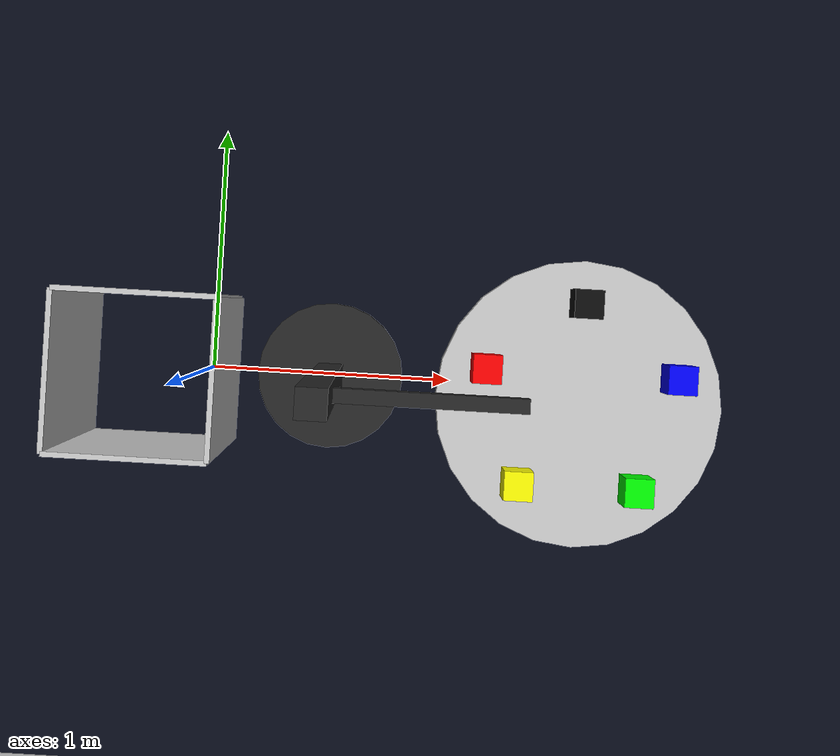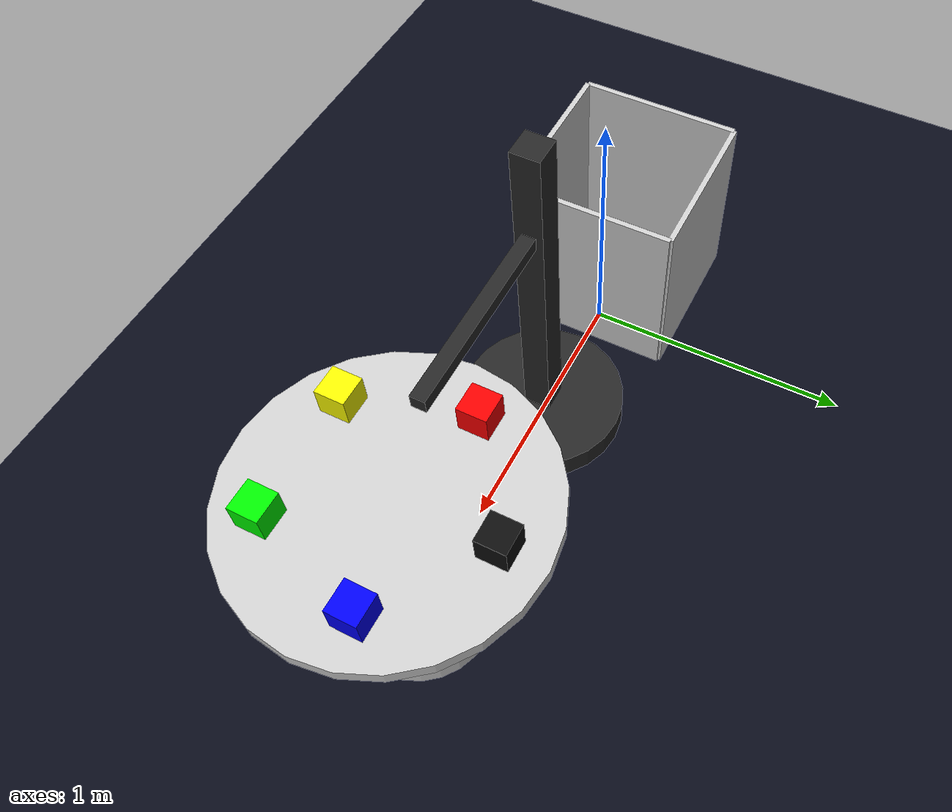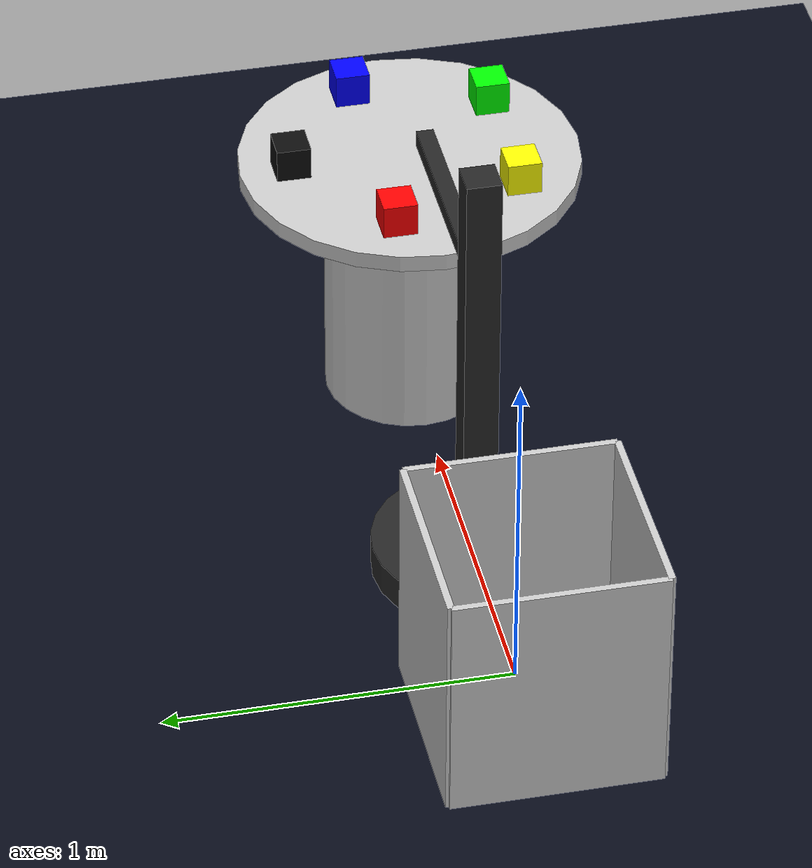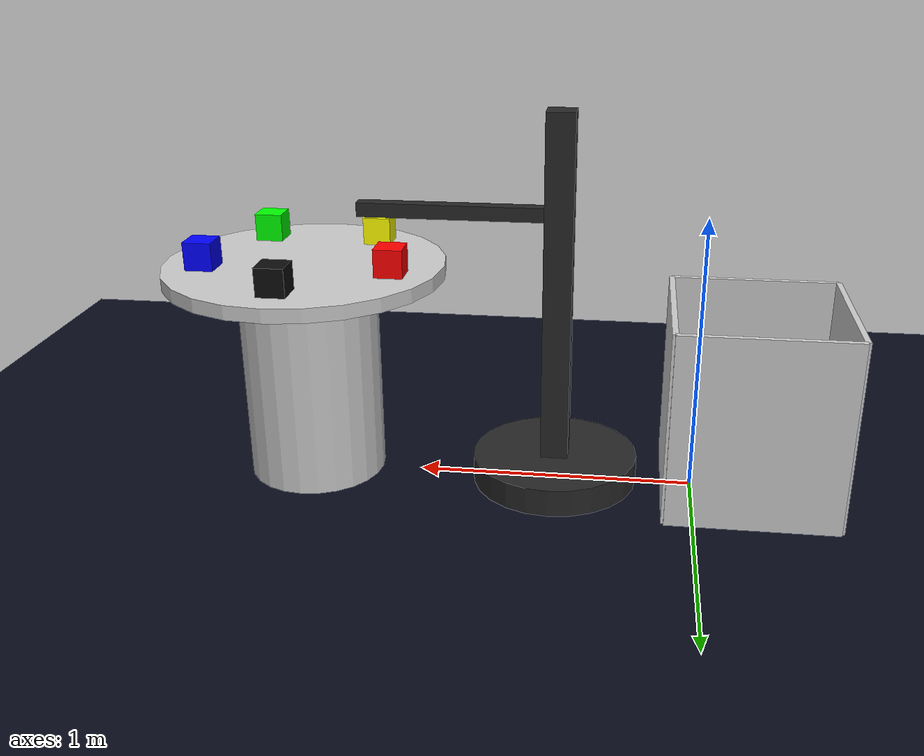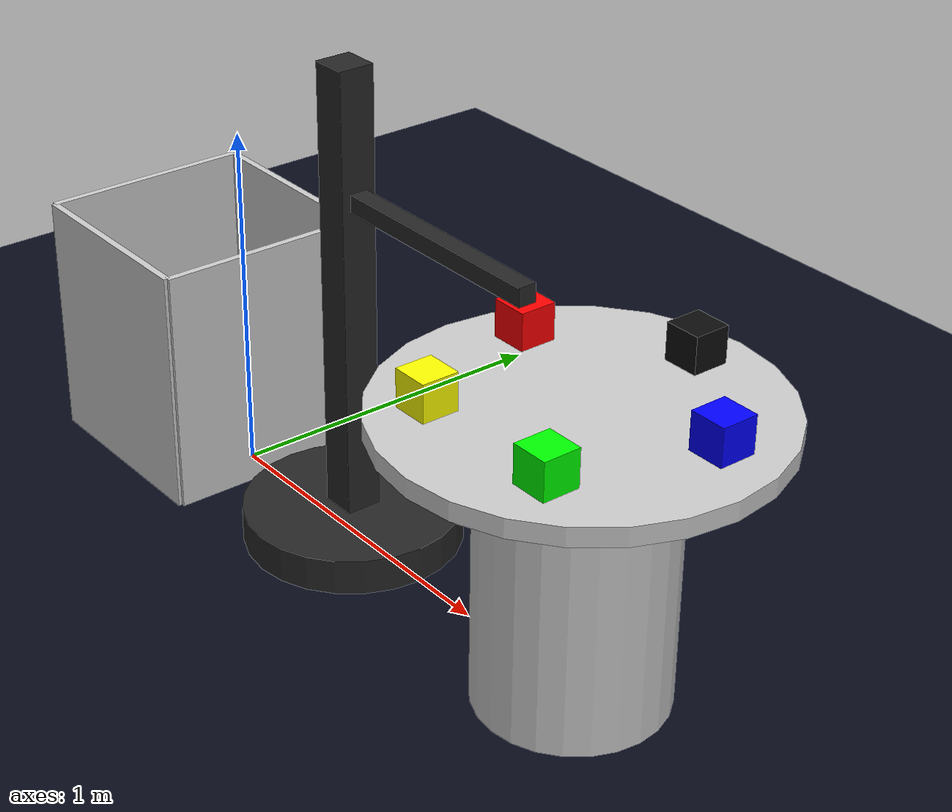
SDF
<?xml version="1.0" ?>
<sdf version="1.11">

<!-- Commands to "attach" red cube and rotate robot to face the bin
  (run these two in sequence to avoid bumping other cubes)-->
<![CDATA[

gz service -s /payload/attach_detach \
  --reqtype gz.msgs.AttachDetachRequest \
  --reptype gz.msgs.Result \
  --timeout 3000 \
  --req 'child_model_name:"red_cube" child_link_name:"link" command:ATTACH'

gz service -s /world/dynamic_detach_demo/set_pose \
  --reqtype gz.msgs.Pose \
  --reptype gz.msgs.Boolean \
  --timeout 3000 \
  --req 'name:"single_arm_robot" position { x: 0.5 y: 0.0 z: 0.75 } orientation { x: 0 y: 0 z: 1 w: 0 }'

]]>

<!-- Commands to "detach" and turn back to original orientation -->
<![CDATA[

gz service -s /payload/attach_detach \
  --reqtype gz.msgs.AttachDetachRequest \
  --reptype gz.msgs.Result \
  --timeout 3000 \
  --req 'child_model_name:"red_cube" child_link_name:"link" command:DETACH'

# Rotate the robot back to original orientation.
gz service -s /world/dynamic_detach_demo/set_pose \
  --reqtype gz.msgs.Pose \
  --reptype gz.msgs.Boolean \
  --timeout 3000 \
  --req 'name:"single_arm_robot" position { x: 0.5 y: 0.0 z: 0.75 } orientation { x: 0 y: 0 z: 0 w: 1 }'

]]>

<!-- Monitor attach/detach state messages -->
  <!--gz topic -e -t /payload/child_state-->

  <world name="dynamic_detach_demo">

    <physics name="1ms" type="ignored">
      <max_step_size>0.001</max_step_size>
      <real_time_factor>1.0</real_time_factor>
    </physics>
    <plugin
      filename="gz-sim-physics-system"
      name="gz::sim::systems::Physics">
    </plugin>
    <plugin
      filename="gz-sim-user-commands-system"
      name="gz::sim::systems::UserCommands">
    </plugin>
    <plugin
      filename="gz-sim-scene-broadcaster-system"
      name="gz::sim::systems::SceneBroadcaster">
    </plugin>

    <light type="directional" name="sun">
      <cast_shadows>true</cast_shadows>
      <pose>0 0 10 0 0 0</pose>
      <diffuse>1 1 1 1</diffuse>
      <specular>0.5 0.5 0.5 1</specular>
      <attenuation>
        <range>1000</range>
        <constant>0.9</constant>
        <linear>0.01</linear>
        <quadratic>0.001</quadratic>
      </attenuation>
      <direction>-0.5 0.1 -0.9</direction>
    </light>

    <model name="ground_plane">
      <static>true</static>
      <link name="link">
        <collision name="collision">
          <geometry>
            <plane>
              <normal>0 0 1</normal>
              <size>100 100</size>
            </plane>
          </geometry>
        </collision>
        <visual name="visual">
          <geometry>
            <plane>
              <normal>0 0 1</normal>
              <size>100 100</size>
            </plane>
          </geometry>
          <material>
            <ambient>0.031 0.043 0.1 1</ambient>
            <diffuse>0.031 0.043 0.1 1</diffuse>
            <specular>0.031 0.043 0.1 1</specular>
          </material>
        </visual>
      </link>
    </model>

    <!-- Simple single arm robot -->
    <model name="single_arm_robot">
      <pose>0.5 0 0.75 0 0 0</pose>
      <self_collide>false</self_collide>
      <link name="base_link">
        <inertial>
          <mass>40</mass>
        </inertial>
        <collision name="base_collision">
          <pose>0 0 -0.70 0 0 0</pose>
          <geometry>
            <cylinder>
              <radius>0.3</radius>
              <length>0.10</length>
            </cylinder>
          </geometry>
        </collision>
        <visual name="base_visual">
          <pose>0 0 -0.70 0 0 0</pose>
          <geometry>
            <cylinder>
              <radius>0.3</radius>
              <length>0.10</length>
            </cylinder>
          </geometry>
          <material>
            <ambient>0.15 0.15 0.15 1</ambient>
            <diffuse>0.15 0.15 0.15 1</diffuse>
          </material>
        </visual>
        <collision name="body_collision">
          <pose>0 0 -0.075 0 0 0</pose>
          <geometry>
            <box>
              <size>0.1 0.1 1.35</size>
            </box>
          </geometry>
        </collision>
        <visual name="body_visual">
          <pose>0 0 -0.075 0 0 0</pose>
          <geometry>
            <box>
              <size>0.1 0.1 1.35</size>
            </box>
          </geometry>
          <material>
            <ambient>0.15 0.15 0.15 1</ambient>
            <diffuse>0.15 0.15 0.15 1</diffuse>
          </material>
        </visual>
      </link>

      <link name="arm">
        <pose>0.35 0 0.25 0 0 0</pose>
        <collision name="collision">
          <geometry>
            <box>
              <size>0.7 0.05 0.05</size>
            </box>
          </geometry>
        </collision>
        <visual name="visual">
          <geometry>
            <box>
              <size>0.7 0.05 0.05</size>
            </box>
          </geometry>
          <material>
            <ambient>0.15 0.15 0.15 1</ambient>
            <diffuse>0.15 0.15 0.15 1</diffuse>
          </material>
        </visual>
      </link>
      <joint name="arm_mount" type="fixed">
        <parent>base_link</parent>
        <child>arm</child>
      </joint>

      <plugin filename="gz-sim-velocity-control-system"
              name="gz::sim::systems::VelocityControl">
        <topic>cmd_vel</topic>
      </plugin>

      <plugin filename="gz-sim-dynamic-detachable-joint-system"
              name="gz::sim::systems::DynamicDetachableJoint">
        <parent_link>arm</parent_link>
        <service_name>/payload/attach_detach</service_name>
        <output_topic>/payload/child_state</output_topic>
        <attach_distance>0.3</attach_distance> <!--30 cm-->
      </plugin>
    </model>

    <!-- Table -->
    <model name="turntable">
      <pose>1.4 0 0 0 0 0</pose>
      <static>false</static>

      <link name="base">
        <pose>0 0 0.375 0 0 0</pose>
        <inertial>
          <mass>20</mass>
        </inertial>
        <collision name="collision">
          <geometry>
            <cylinder>
              <radius>0.25</radius>
              <length>0.75</length>
            </cylinder>
          </geometry>
        </collision>
        <visual name="visual">
          <geometry>
            <cylinder>
              <radius>0.25</radius>
              <length>0.75</length>
            </cylinder>
          </geometry>
          <material>
            <ambient>0.8 0.8 0.8 1</ambient>
            <diffuse>0.8 0.8 0.8 1</diffuse>
          </material>
        </visual>
      </link>

      <link name="turntable">
        <pose>0 0 0.775 0 0 0</pose>
        <inertial>
          <mass>5</mass>
        </inertial>
        <collision name="collision">
          <geometry>
            <cylinder>
              <radius>0.5</radius>
              <length>0.05</length>
            </cylinder>
          </geometry>
        </collision>
        <visual name="visual">
          <geometry>
            <cylinder>
              <radius>0.5</radius>
              <length>0.05</length>
            </cylinder>
          </geometry>
          <material>
            <ambient>0.8 0.8 0.8 1</ambient>
            <diffuse>0.8 0.8 0.8 1</diffuse>
          </material>
        </visual>
      </link>

      <!-- Rotating turntable joint -->
      <joint name="turntable_joint" type="revolute">
        <parent>base</parent>
        <child>turntable</child>
        <pose>0 0 0.75 0 0 0</pose>
        <axis>
          <xyz>0 0 1</xyz>
          <limit>
            <lower>-1e16</lower>
            <upper>1e16</upper>
          </limit>
        </axis>
      </joint>
      <plugin filename="gz-sim-joint-controller-system"
              name="gz::sim::systems::JointController">
        <joint_name>turntable_joint</joint_name>
        <initial_velocity>0.4</initial_velocity>
      </plugin>
    </model>

    <!-- 5 colored cubes to pick up arranged in a pentagon pattern-->
    <model name="black_cube">
      <pose>1.400 0.350 0.85 0 0 0</pose>
      <link name="link">
        <inertial>
          <mass>0.2</mass>
        </inertial>
        <collision name="collision">
          <geometry>
            <box>
              <size>0.1 0.1 0.1</size>
            </box>
          </geometry>
        </collision>
        <visual name="visual">
          <geometry>
            <box>
              <size>0.1 0.1 0.1</size>
            </box>
          </geometry>
          <material>
            <ambient>0.05 0.05 0.05 1</ambient>
            <diffuse>0.05 0.05 0.05 1</diffuse>
          </material>
        </visual>
      </link>
    </model>
    <model name="blue_cube">
      <pose>1.733  0.108 0.85 0 0 0</pose>
      <link name="link">
        <inertial>
          <mass>0.2</mass>
        </inertial>
        <collision name="collision">
          <geometry>
            <box>
              <size>0.1 0.1 0.1</size>
            </box>
          </geometry>
        </collision>
        <visual name="visual">
          <geometry>
            <box>
              <size>0.1 0.1 0.1</size>
            </box>
          </geometry>
          <material>
            <ambient>0 0 1 1</ambient>
            <diffuse>0 0 1 1</diffuse>
          </material>
        </visual>
      </link>
    </model>
    <model name="green_cube">
      <pose>1.606 -0.283 0.85 0 0 0</pose>
      <link name="link">
        <inertial>
          <mass>0.2</mass>
        </inertial>
        <collision name="collision">
          <geometry>
            <box>
              <size>0.1 0.1 0.1</size>
            </box>
          </geometry>
        </collision>
        <visual name="visual">
          <geometry>
            <box>
              <size>0.1 0.1 0.1</size>
            </box>
          </geometry>
          <material>
            <ambient>0 1 0 1</ambient>
            <diffuse>0 1 0 1</diffuse>
          </material>
        </visual>
      </link>
    </model>
    <model name="yellow_cube">
      <pose>1.194 -0.283 0.85 0 0 0</pose>
      <link name="link">
        <inertial>
          <mass>0.2</mass>
        </inertial>
        <collision name="collision">
          <geometry>
            <box>
              <size>0.1 0.1 0.1</size>
            </box>
          </geometry>
        </collision>
        <visual name="visual">
          <geometry>
            <box>
              <size>0.1 0.1 0.1</size>
            </box>
          </geometry>
          <material>
            <ambient>1 1 0 1</ambient>
            <diffuse>1 1 0 1</diffuse>
          </material>
        </visual>
      </link>
    </model>
    <model name="red_cube">
      <pose>1.067 0.108 0.85 0 0 0</pose>
      <link name="link">
        <inertial>
          <mass>0.2</mass>
        </inertial>
        <collision name="collision">
          <geometry>
            <box>
              <size>0.1 0.1 0.1</size>
            </box>
          </geometry>
        </collision>
        <visual name="visual">
          <geometry>
            <box>
              <size>0.1 0.1 0.1</size>
            </box>
          </geometry>
          <material>
            <ambient>1 0 0 1</ambient>
            <diffuse>1 0 0 1</diffuse>
          </material>
        </visual>
      </link>
    </model>

    <!-- A simple 4 walled bin to drop the cube into-->
    <model name="collection_bin">
      <pose>-0.2 0 0 0 0 0</pose>
      <static>true</static>
      <link name="bin_walls">
        <collision name="front_wall">
          <pose>0.30 0 0.35 0 0 0</pose>
          <geometry>
            <box>
              <size>0.02 0.6 0.7</size>
            </box>
          </geometry>
        </collision>
        <collision name="back_wall">
          <pose>-0.30 0 0.35 0 0 0</pose>
          <geometry>
            <box>
              <size>0.02 0.6 0.7</size>
            </box>
          </geometry>
        </collision>
        <collision name="right_wall">
          <pose>0 0.30 0.35 0 0 0</pose>
          <geometry>
            <box>
              <size>0.6 0.02 0.7</size>
            </box>
          </geometry>
        </collision>
        <collision name="left_wall">
          <pose>0 -0.30 0.35 0 0 0</pose>
          <geometry>
            <box>
              <size>0.6 0.02 0.7</size>
            </box>
          </geometry>
        </collision>

        <visual name="front_wall_visual">
          <pose>0.30 0 0.35 0 0 0</pose>
          <geometry>
            <box>
              <size>0.02 0.6 0.7</size>
            </box>
          </geometry>
          <material>
            <ambient>0.8 0.8 0.8 1</ambient>
            <diffuse>0.8 0.8 0.8 1</diffuse>
          </material>
        </visual>
        <visual name="back_wall_visual">
          <pose>-0.30 0 0.35 0 0 0</pose>
          <geometry>
            <box>
              <size>0.02 0.6 0.7</size>
            </box>
          </geometry>
          <material>
            <ambient>0.8 0.8 0.8 1</ambient>
            <diffuse>0.8 0.8 0.8 1</diffuse>
          </material>
        </visual>
        <visual name="right_wall_visual">
          <pose>0 0.30 0.35 0 0 0</pose>
          <geometry>
            <box>
              <size>0.6 0.02 0.7</size>
            </box>
          </geometry>
          <material>
            <ambient>0.8 0.8 0.8 1</ambient>
            <diffuse>0.8 0.8 0.8 1</diffuse>
          </material>
        </visual>
        <visual name="left_wall_visual">
          <pose>0 -0.30 0.35 0 0 0</pose>
          <geometry>
            <box>
              <size>0.6 0.02 0.7</size>
            </box>
          </geometry>
          <material>
            <ambient>0.8 0.8 0.8 1</ambient>
            <diffuse>0.8 0.8 0.8 1</diffuse>
          </material>
        </visual>
      </link>
  </model>
  </world>
</sdf>
